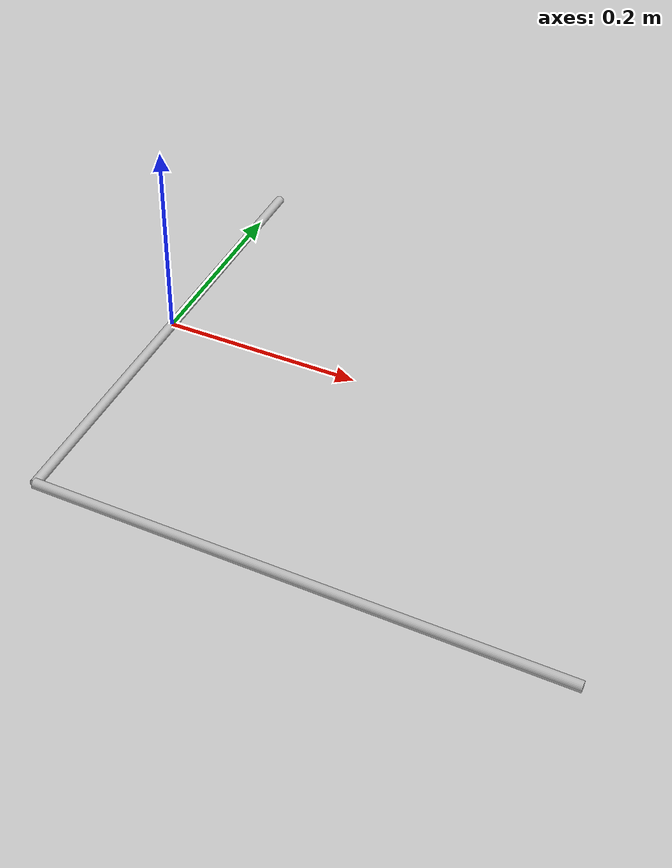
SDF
<?xml version='1.0'?>
<sdf version='1.5'>
  <model name="payload2">
        <static>true</static>
<link name="payload_first_link">
        <pose>0.0 0.0 0.00 0 1.57 1.57</pose>
	<gravity>1</gravity>
		 <inertial>
          <inertia>
            <ixx>0.005</ixx>
            <ixy>0</ixy>
            <ixz>0</ixz>
            <iyy>0.005</iyy>
            <iyz>0</iyz>
            <izz>0.00001</izz>
          </inertia>
          <mass>0.03</mass>
        </inertial>
        <collision name="collision_payload_first_link">
          <geometry>
            <cylinder>
              <radius>0.0005</radius>
              <length>0.50</length>
            </cylinder>
          </geometry>
	  <surface>
	    <contact>
		<collide_without_contact>false</collide_without_contact>
		<ode>
		  <kp>0.05</kp>
		  <kd>0.05</kd>
		</ode>
	    </contact>
	    <friction>
		<torsional>
		  <coefficient>0.1</coefficient>
		</torsional>
		<ode>
		  <mu>0.1</mu>
		</ode>
	    </friction>
	  </surface>
        </collision>
        <visual name="visual_payload_first_link">
          <geometry>
            <cylinder>
              <radius>0.005</radius>
              <length>0.50</length>
            </cylinder>
          </geometry>
        </visual>
      </link>

	      <link name="payload_link">
        <pose>0.25 -0.25 0.0015 0 1.57 0</pose>
	<gravity>1</gravity>
		 <inertial>
          <inertia>
            <ixx>0.005</ixx>
            <ixy>0</ixy>
            <ixz>0</ixz>
            <iyy>0.005</iyy>
            <iyz>0</iyz>
            <izz>0.00001</izz>
          </inertia>
          <mass>0.1</mass>
        </inertial>
        <collision name="collision_payload_link">
          <geometry>
            <cylinder>
              <radius>0.0005</radius>
              <length>0.5</length>
            </cylinder>
          </geometry>
	  <surface>
	    <contact>
		<collide_without_contact>true</collide_without_contact>
		<ode>
		  <kp>0.05</kp>
		  <kd>0.05</kd>
		</ode>
	    </contact>
	    <friction>
		<torsional>
		  <coefficient>0.1</coefficient>
		</torsional>
		<ode>
		  <mu>0.1</mu>
		</ode>
	    </friction>
	  </surface>
        </collision>
        <visual name="visual_payload_link">
          <geometry>
            <cylinder>
              <radius>0.005</radius>
              <length>0.5</length>
            </cylinder>
          </geometry>
        </visual>
      </link>

 <joint name="payload_first_link_link_joint" type="revolute">
      <parent>payload_first_link</parent>
      <child>payload_link</child>
      <pose>-0.00 0.0 -0.25 0 0.0 0.0</pose>
	<axis>
        <xyz>0 1 0</xyz>
      </axis>
	 <physics>
	 <ode>
	 <provide_feedback>true</provide_feedback>
	 			<implicit_spring_damper>true</implicit_spring_damper>
	 </ode>
	 </physics>
	 <sensor name="force_torque" type="force_torque">
      <update_rate>200</update_rate>
	  <always_on>true</always_on>
     </sensor>
  </joint>
		<plugin name="ft_sensor" filename="libgazebo_ros_ft_sensor.so">
			  <always_on>true</always_on>
            <updateRate>200.0</updateRate>
            <topicName>/ft_sensor</topicName>
		            <jointName>payload_first_link_link_joint</jointName>
        </plugin>
	<plugin name="imu_plugin_payload" filename="libgazebo_ros_imu.so">
      <alwaysOn>true</alwaysOn>
      <bodyName>payload_link</bodyName>
      <topicName>/sim_payload_imu</topicName>
      <serviceName>imu_service</serviceName>
      <gaussianNoise>0.0</gaussianNoise>
      <updateRate>200.0</updateRate>
    </plugin>

  </model>
</sdf>
